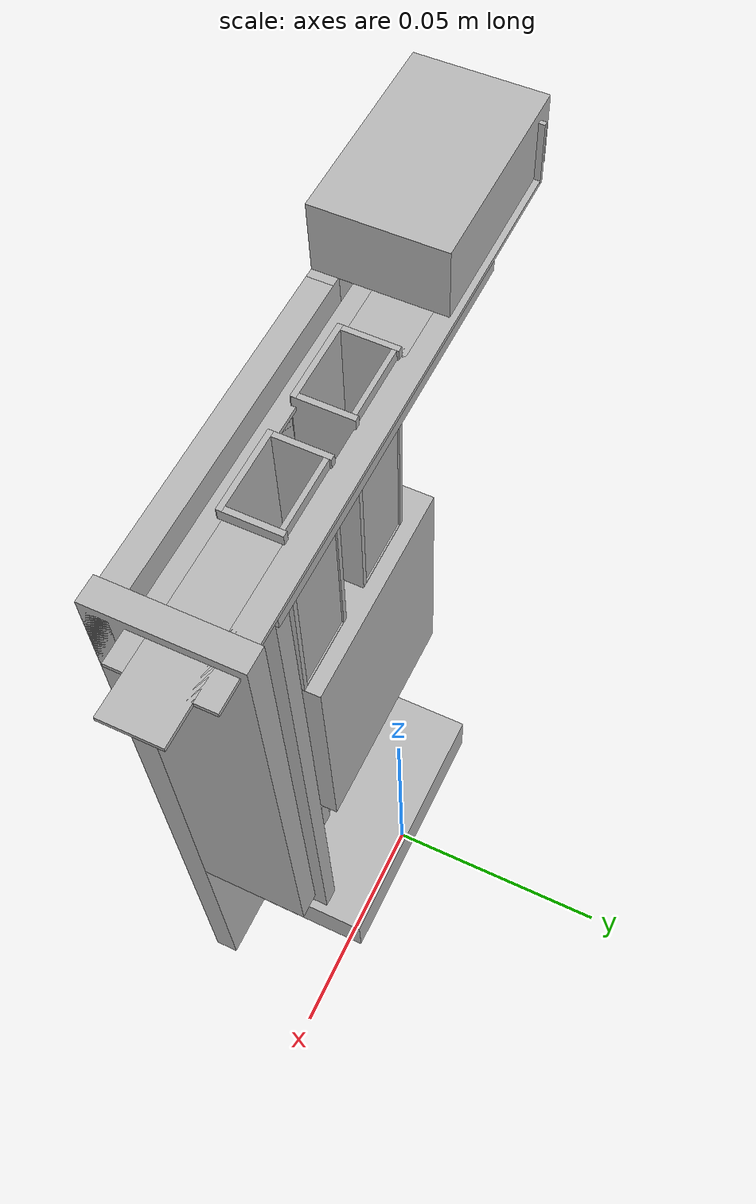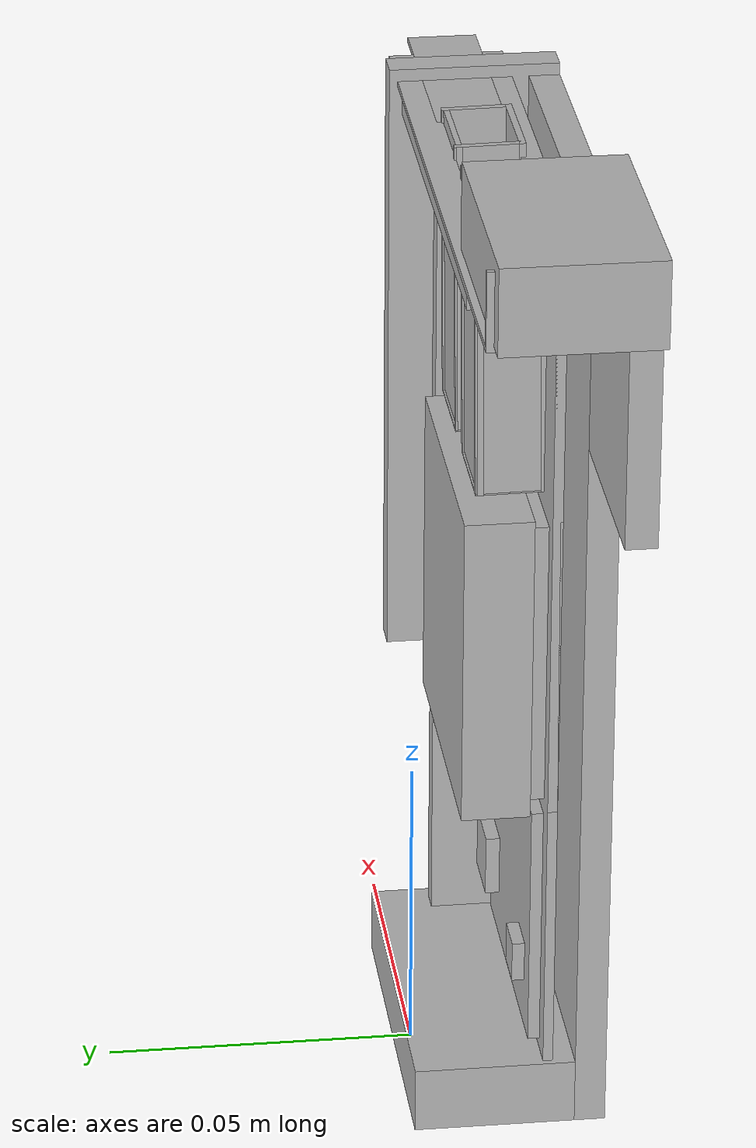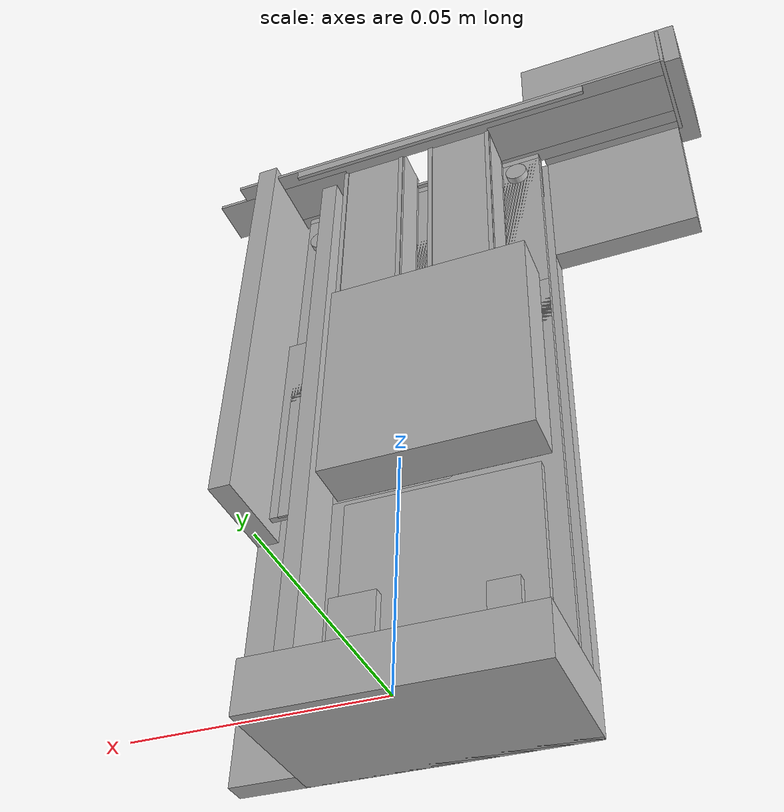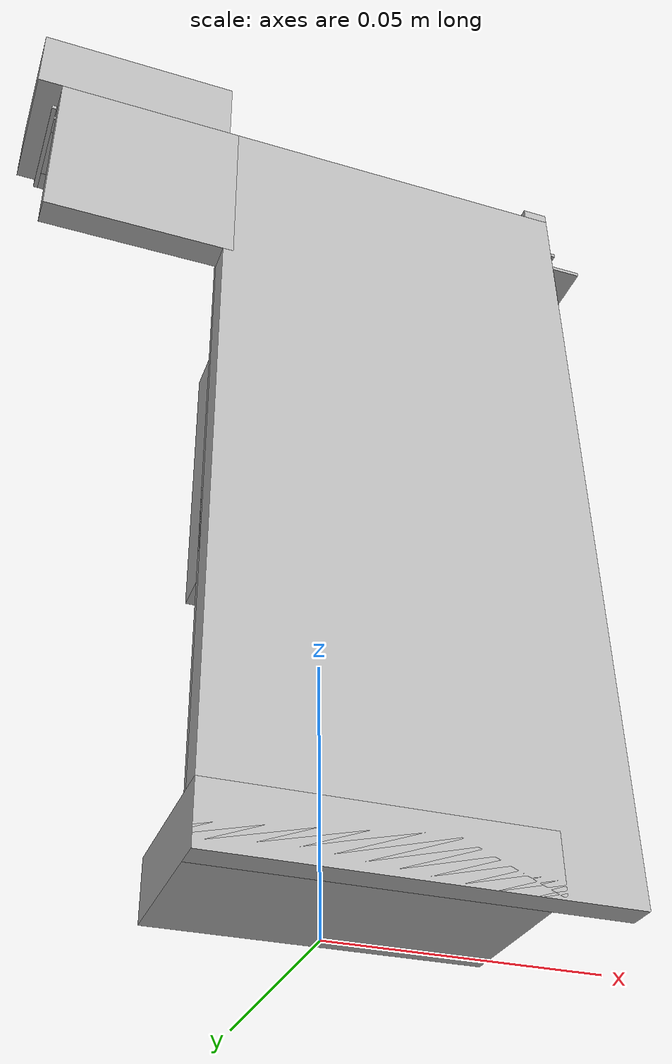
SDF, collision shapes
<?xml version="1.0" ?>
<sdf version="1.9">
  <model name="NIC Card Mount">

    <link name="nic_card_mount_link">
      <visual name="nic_card_mount_visual">
        <geometry>
          <mesh>
            <uri>nic_card_mount_visual.glb</uri>
          </mesh>
        </geometry>
      </visual>
      <collision name="v1015085006_collider_box">
        <pose>0.007 -0.0255 0.0775 0.0 0.0 1.570796</pose>
        <geometry>
          <box>
            <size>0.005 0.072 0.155</size>
          </box>
        </geometry>
      </collision>
      <collision name="v1015085006_collider_box.001">
        <pose>-0.048467 -0.0155 0.162 0.0 0.0 1.570796</pose>
        <geometry>
          <box>
            <size>0.025 0.039374 0.014</size>
          </box>
        </geometry>
      </collision>
      <collision name="v1015085006_collider_box.002">
        <pose>0.0405 -0.01425 0.1055 0.0 0.0 1.570796</pose>
        <geometry>
          <box>
            <size>0.0275 0.005 0.103</size>
          </box>
        </geometry>
      </collision>
      <collision name="v1015085006_collider_box.003">
        <pose>0.0 -0.0125 0.0055 0.0 0.0 1.570796</pose>
        <geometry>
          <box>
            <size>0.031 0.058 0.011</size>
          </box>
        </geometry>
      </collision>
      <collision name="v1015085006_collider_box004_collider_box">
        <pose>-0.045132 -0.0255 0.137803 0.0 0.0 1.570796</pose>
        <geometry>
          <box>
            <size>0.005 0.036343 0.034395</size>
          </box>
        </geometry>
      </collision>
    </link>

    <link name="nic_card_link">
      <pose>0 -0.01785 0.0799 -1.5708 0 0</pose>
      <inertial auto="true">
        <mass>0.15</mass>
      </inertial>
      <visual name="nic_card_visual">
        <geometry>
          <mesh>
            <uri>nic_card_visual.glb</uri>
          </mesh>
        </geometry>
      </visual>
      <collision name="pcb_collider_box">
        <pose>0.0 0.0 -0.0008 0.0 0.0 0.0</pose>
        <geometry>
          <box>
            <size>0.056 0.145 0.0016</size>
          </box>
        </geometry>
      </collision>
      <collision name="pcb_collider_box.001">
        <pose>0.0065 -0.0025 -0.0008 0.0 0.0 0.0</pose>
        <geometry>
          <box>
            <size>0.069 0.051 0.0016</size>
          </box>
        </geometry>
      </collision>
      <collision name="pcb_collider_box.002">
        <pose>0.004 -0.02475 -0.0008 0.0 0.0 0.0</pose>
        <geometry>
          <box>
            <size>0.064 0.0955 0.0016</size>
          </box>
        </geometry>
      </collision>
      <collision name="cylinder015_collider_cylinder">
        <pose>0.03175 -0.063 -0.000988 0.0 0.0 0.0</pose>
        <geometry>
          <cylinder>
            <radius>0.00268</radius>
            <length>0.005514</length>
          </cylinder>
        </geometry>
      </collision>
      <collision name="cylinder017_collider_cylinder">
        <pose>-0.02225 -0.0675 -0.000986 0.0 0.0 0.0</pose>
        <geometry>
          <cylinder>
            <radius>0.00268</radius>
            <length>0.005518</length>
          </cylinder>
        </geometry>
      </collision>
      <collision name="pcb001_collider_box">
        <pose>0.015105 0.054161 0.001899 0.0 0.0 0.0</pose>
        <geometry>
          <box>
            <size>0.01025 0.01025 0.004603</size>
          </box>
        </geometry>
      </collision>
      <collision name="pcb024_collider_box">
        <pose>-0.015586 0.055516 0.001759 0.0 0.0 0.0</pose>
        <geometry>
          <box>
            <size>0.0068 0.0068 0.004324</size>
          </box>
        </geometry>
      </collision>
      <collision name="pcb033_collider_box">
        <pose>-0.002297 0.046302 0.000749 0.0 0.0 0.0</pose>
        <geometry>
          <box>
            <size>0.043074 0.041615 0.002303</size>
          </box>
        </geometry>
      </collision>
      <collision name="cube001_collider_box">
        <pose>0.025006 -0.00041 0.00575 0.0 0.0 0.0</pose>
        <geometry>
          <box>
            <size>0.004 0.14 0.0115</size>
          </box>
        </geometry>
      </collision>
      <collision name="cube001_collider_box.001">
        <pose>-0.0029 -0.0015 0.008 0.0 0.0 0.0</pose>
        <geometry>
          <box>
            <size>0.047 0.052 0.011</size>
          </box>
        </geometry>
      </collision>
      <collision name="10099100-011lfc001_collider_box">
        <pose>-0.017799 -0.052954 0.00548 3.128092 0.0 0.0</pose>
        <geometry>
          <box>
            <size>0.001099 0.04872 0.011083</size>
          </box>
        </geometry>
      </collision>
      <collision name="10099100-011lfc001_collider_box.001">
        <pose>-0.002687 -0.052954 0.005461 3.128092 0.0 0.0</pose>
        <geometry>
          <box>
            <size>0.001125 0.04872 0.011121</size>
          </box>
        </geometry>
      </collision>
      <collision name="10099100-011lfc001_collider_box.002">
        <pose>-0.010237 -0.052889 0.010234 3.128092 0.0 0.0</pose>
        <geometry>
          <box>
            <size>0.016224 0.04872 0.000923</size>
          </box>
        </geometry>
      </collision>
      <collision name="10099100-011lfc001_collider_box.003">
        <pose>-0.010237 -0.053024 0.000296 3.128092 0.0 0.0</pose>
        <geometry>
          <box>
            <size>0.016224 0.04872 0.001054</size>
          </box>
        </geometry>
      </collision>
      <collision name="10099100-011lfc001_collider_box.004">
        <pose>-0.010237 -0.028738 0.003845 3.128092 0.0 0.0</pose>
        <geometry>
          <box>
            <size>0.016224 0.00025 0.013698</size>
          </box>
        </geometry>
      </collision>
      <collision name="10099100-011lfc001_collider_box.005">
        <pose>0.005401 -0.052954 0.00548 3.128092 0.0 0.0</pose>
        <geometry>
          <box>
            <size>0.001099 0.04872 0.011083</size>
          </box>
        </geometry>
      </collision>
      <collision name="10099100-011lfc001_collider_box.006">
        <pose>0.020513 -0.052954 0.005461 3.128092 0.0 0.0</pose>
        <geometry>
          <box>
            <size>0.001125 0.04872 0.011121</size>
          </box>
        </geometry>
      </collision>
      <collision name="10099100-011lfc001_collider_box.007">
        <pose>0.012963 -0.052889 0.010234 3.128092 0.0 0.0</pose>
        <geometry>
          <box>
            <size>0.016224 0.04872 0.000923</size>
          </box>
        </geometry>
      </collision>
      <collision name="10099100-011lfc001_collider_box.008">
        <pose>0.012963 -0.053024 0.000296 3.128092 0.0 0.0</pose>
        <geometry>
          <box>
            <size>0.016224 0.04872 0.001054</size>
          </box>
        </geometry>
      </collision>
      <collision name="10099100-011lfc001_collider_box.009">
        <pose>0.012963 -0.028738 0.003845 3.128092 0.0 0.0</pose>
        <geometry>
          <box>
            <size>0.016224 0.00025 0.013698</size>
          </box>
        </geometry>
      </collision>
      <collision name="plane001_collider_box">
        <pose>-0.007649 -0.074646 -0.000751 0.0 0.0 0.0</pose>
        <geometry>
          <box>
            <size>0.113402 0.000875 0.003449</size>
          </box>
        </geometry>
      </collision>
      <collision name="plane001_collider_box.001">
        <pose>-0.007649 -0.074646 0.01352 0.0 0.0 0.0</pose>
        <geometry>
          <box>
            <size>0.113402 0.000875 0.00501</size>
          </box>
        </geometry>
      </collision>
      <collision name="plane001_collider_box.002">
        <pose>0.038559 -0.074646 0.006455 0.0 0.0 0.0</pose>
        <geometry>
          <box>
            <size>0.036181 0.000875 0.011123</size>
          </box>
        </geometry>
      </collision>
      <collision name="plane001_collider_box.003">
        <pose>-0.041261 -0.074646 0.006455 0.0 0.0 0.0</pose>
        <geometry>
          <box>
            <size>0.046178 0.000875 0.011123</size>
          </box>
        </geometry>
      </collision>
      <collision name="plane001_collider_box.004">
        <pose>-0.063913 -0.080558 0.005525 0.0 0.0 0.0</pose>
        <geometry>
          <box>
            <size>0.000875 0.0127 0.021</size>
          </box>
        </geometry>
      </collision>
      <collision name="plane001_collider_box.005">
        <pose>0.004 -0.067206 -0.001238 0.0 0.0 0.0</pose>
        <geometry>
          <box>
            <size>0.064 0.014996 0.002475</size>
          </box>
        </geometry>
      </collision>
      <collision name="cube001_collider_box.002">
        <pose>-0.0029 -0.0015 0.001228 0.0 0.0 0.0</pose>
        <geometry>
          <box>
            <size>0.043 0.048 0.003149</size>
          </box>
        </geometry>
      </collision>
      <collision name="plane001_collider_box.006">
        <pose>-0.005942 -0.073499 0.015586 0.0 0.0 0.0</pose>
        <geometry>
          <box>
            <size>0.076184 0.003168 0.000877</size>
          </box>
        </geometry>
      </collision>
    </link>

  </model>
</sdf>
